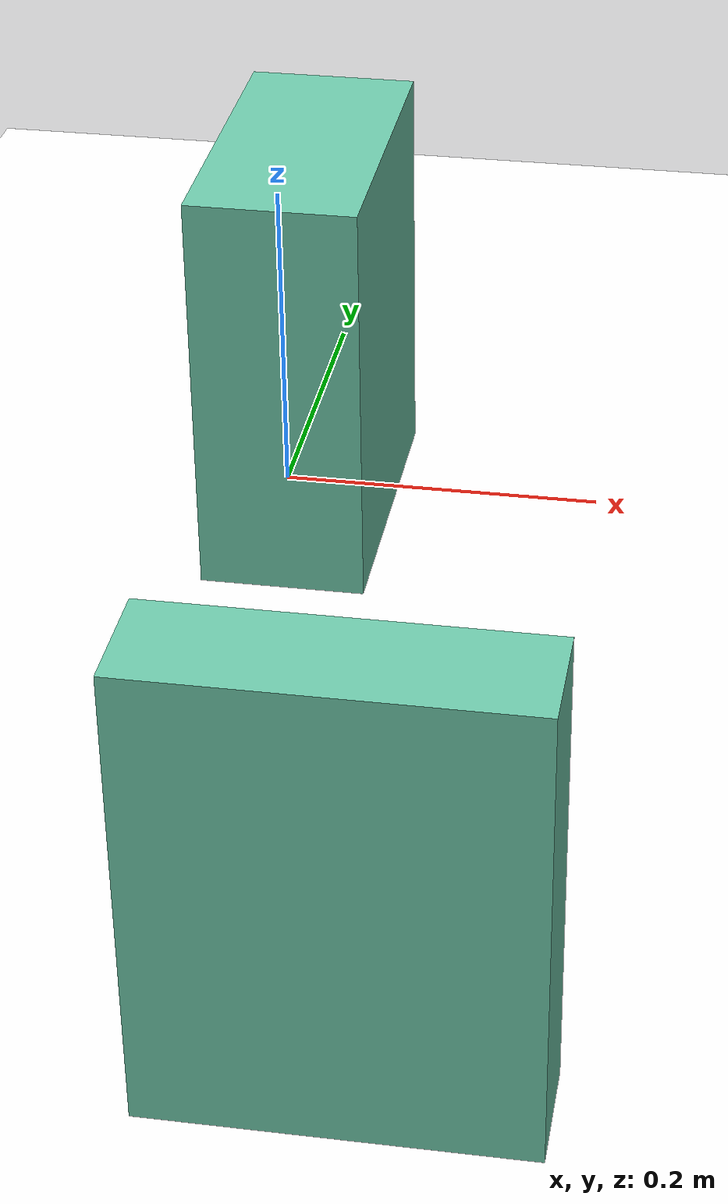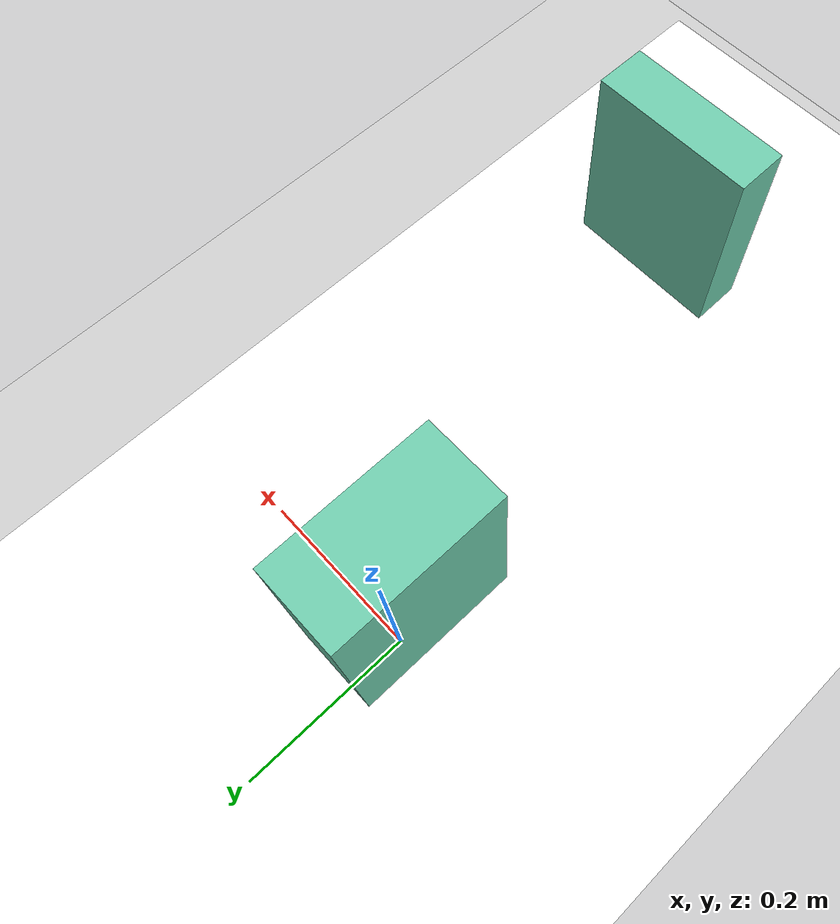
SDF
<?xml version="1.0" ?>
<sdf version="1.4">
  <world name="default">
    <gui>
      <camera name="user_camera">
        <pose>0 0 1.8 0 1.5708 -3.1415</pose>
      </camera>
    </gui>
    <scene>
      <ambient>0.5 0.5 0.5 1.0</ambient>
      <shadows>0</shadows>
    </scene>
    <include>
      <uri>model://ground_plane</uri>
    </include>
    <include>
      <uri>model://sun</uri>
    </include>
    <include>
      <uri>model://racetrack10</uri>
      <name>race_track10</name>
      <pose>0 0 0 0 0 0</pose>
    </include>

    <model name='obstacle1'>
    <pose frame=''>0.14 -0.55 0 0 -0 0</pose>
    <link name='Wall_0'>
      <collision name='Wall_0_Collision'>
        <geometry>
          <box>
            <size>0.195 0.06 0.25</size>
          </box>
        </geometry>
        <pose frame=''>0 0 0.125 0 -0 0</pose>
      </collision>
      <visual name='Wall_0_Visual'>
        <pose frame=''>0 0 0.125 0 -0 0</pose>
        <geometry>
          <box>
            <size>0.195 0.06 0.25</size>
          </box>
        </geometry>
        <material>
          <script>
            <uri>file://media/materials/scripts/gazebo.material</uri>
            <name>Gazebo/Grey</name>
          </script>
          <ambient>0.435294 0.796078 0.67451 1</ambient>
        </material>
        <meta>
          <layer>0</layer>
        </meta>
      </visual>
      <pose frame=''>0 0 0 0 -0 0</pose>
    </link>
    <static>1</static>
  </model>

    <model name='obstacle2'>
    <pose frame=''>0.0225 -0.03 0 0 -0 1.5707963268</pose>
    <link name='Wall_0'>
      <collision name='Wall_0_Collision'>
        <geometry>
          <box>
            <size>0.195 0.1 0.25</size>
          </box>
        </geometry>
        <pose frame=''>0 0 0.125 0 -0 0</pose>
      </collision>
      <visual name='Wall_0_Visual'>
        <pose frame=''>0 0 0.125 0 -0 0</pose>
        <geometry>
          <box>
            <size>0.195 0.1 0.25</size>
          </box>
        </geometry>
        <material>
          <script>
            <uri>file://media/materials/scripts/gazebo.material</uri>
            <name>Gazebo/Grey</name>
          </script>
          <ambient>0.435294 0.796078 0.67451 1</ambient>
        </material>
        <meta>
          <layer>0</layer>
        </meta>
      </visual>
      <pose frame=''>0 0 0 0 -0 0</pose>
    </link>
    <static>1</static>
  </model>

  </world>
</sdf>

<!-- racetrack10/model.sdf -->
<sdf version='1.6'>
  <model name='race_track10'>
    <static>true</static>
    <link name='link'>
      <visual name='visual'>
        <geometry>
          <box>
            <size>0.774 1.738 0.000553</size>
          </box>
        </geometry>
        <material>
          <script>
            <name>RaceTrack10/track10</name>
	    <uri>model://racetrack10/materials/scripts</uri>
            <uri>model://racetrack10/materials/textures</uri>
          </script>
          <ambient>1 1 1 1</ambient>
          <diffuse>1 1 1 1</diffuse>
          <specular>0.01 0.01 0.01 1</specular>
          <emissive>1 1 1 1</emissive>
        </material>
        <transparency>0</transparency>
      </visual>
      <collision name='collision'>
        <geometry>
          <box>
            <size>0.774 1.738 0.000553</size>
          </box>
        </geometry>
	<surface>
          <friction>
            <ode>
              <mu>100</mu>
              <mu2>50</mu2>
            </ode>
          </friction>
        </surface>
      </collision>
    </link>
  </model>
</sdf>
